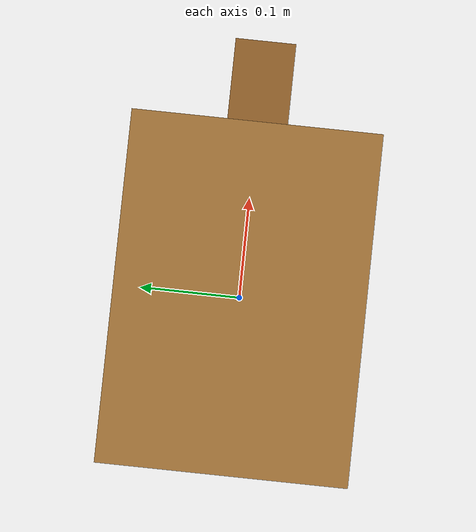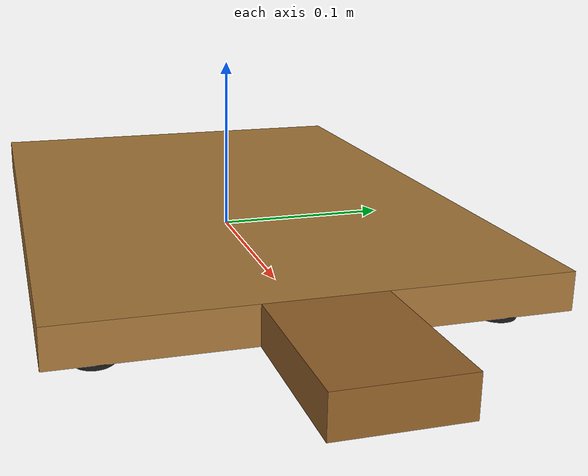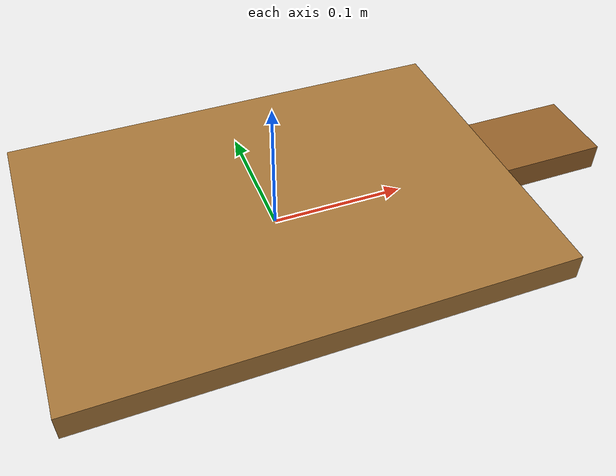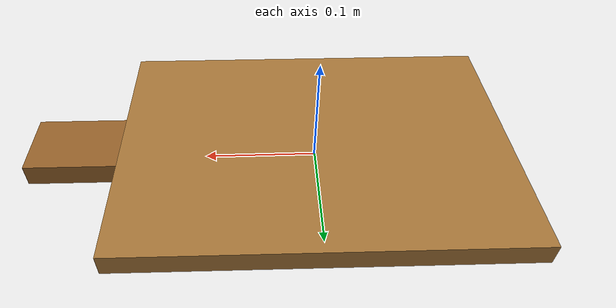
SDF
<?xml version="1.0" ?>
<sdf version="1.7">
  <model name="chop_board">
    <static>false</static>
    <link name="link">

      <inertial>
        <!-- Approximate as solid box 0.35 × 0.25 × 0.02 m, ~1.2 kg -->
        <mass>1.2</mass>
        <inertia>
          <!-- ixx=(1/12)*m*(y²+z²)  iyy=(1/12)*m*(x²+z²)  izz=(1/12)*m*(x²+y²) -->
          <ixx>0.006253</ixx>
          <iyy>0.012260</iyy>
          <izz>0.018300</izz>
          <ixy>0</ixy><ixz>0</ixz><iyz>0</iyz>
        </inertia>
      </inertial>

      <!-- Main board ───────────────────────────────── -->
      <collision name="board_collision">
        <pose>0 0 0.01 0 0 0</pose>
        <geometry><box><size>0.35 0.25 0.02</size></box></geometry>
        <surface><friction><ode><mu>0.9</mu><mu2>0.9</mu2></ode></friction></surface>
      </collision>
      <visual name="board_visual">
        <pose>0 0 0.01 0 0 0</pose>
        <geometry><box><size>0.35 0.25 0.02</size></box></geometry>
        <material>
          <ambient>0.55 0.38 0.18 1</ambient>
          <diffuse>0.65 0.46 0.22 1</diffuse>
          <specular>0.04 0.03 0.02 1</specular>
        </material>
      </visual>

      <!-- Handle ───────────────────────────────────── -->
      <collision name="handle_collision">
        <pose>0.215 0 0.01 0 0 0</pose>
        <geometry><box><size>0.08 0.06 0.02</size></box></geometry>
      </collision>
      <visual name="handle_visual">
        <pose>0.215 0 0.01 0 0 0</pose>
        <geometry><box><size>0.08 0.06 0.02</size></box></geometry>
        <material>
          <ambient>0.50 0.32 0.14 1</ambient>
          <diffuse>0.58 0.38 0.16 1</diffuse>
          <specular>0.04 0.03 0.02 1</specular>
        </material>
      </visual>

      <!-- Juice groove — left ──────────────────────── -->

      <!-- Juice groove — right ─────────────────────── -->

      <!-- Front-left foot ──────────────────────────── -->
      <collision name="foot_front_left_collision">
        <pose>-0.15 0.10 -0.005 0 0 0</pose>
        <geometry><cylinder><radius>0.010</radius><length>0.010</length></cylinder></geometry>
        <surface><friction><ode><mu>1.2</mu><mu2>1.2</mu2></ode></friction></surface>
      </collision>
      <visual name="foot_front_left_visual">
        <pose>-0.15 0.10 -0.005 0 0 0</pose>
        <geometry><cylinder><radius>0.010</radius><length>0.010</length></cylinder></geometry>
        <material>
          <ambient>0.08 0.08 0.08 1</ambient>
          <diffuse>0.10 0.10 0.10 1</diffuse>
          <specular>0.01 0.01 0.01 1</specular>
        </material>
      </visual>

      <!-- Front-right foot ─────────────────────────── -->
      <collision name="foot_front_right_collision">
        <pose>0.15 0.10 -0.005 0 0 0</pose>
        <geometry><cylinder><radius>0.010</radius><length>0.010</length></cylinder></geometry>
        <surface><friction><ode><mu>1.2</mu><mu2>1.2</mu2></ode></friction></surface>
      </collision>
      <visual name="foot_front_right_visual">
        <pose>0.15 0.10 -0.005 0 0 0</pose>
        <geometry><cylinder><radius>0.010</radius><length>0.010</length></cylinder></geometry>
        <material>
          <ambient>0.08 0.08 0.08 1</ambient>
          <diffuse>0.10 0.10 0.10 1</diffuse>
          <specular>0.01 0.01 0.01 1</specular>
        </material>
      </visual>

      <!-- Back-left foot ───────────────────────────── -->
      <collision name="foot_back_left_collision">
        <pose>-0.15 -0.10 -0.005 0 0 0</pose>
        <geometry><cylinder><radius>0.010</radius><length>0.010</length></cylinder></geometry>
        <surface><friction><ode><mu>1.2</mu><mu2>1.2</mu2></ode></friction></surface>
      </collision>
      <visual name="foot_back_left_visual">
        <pose>-0.15 -0.10 -0.005 0 0 0</pose>
        <geometry><cylinder><radius>0.010</radius><length>0.010</length></cylinder></geometry>
        <material>
          <ambient>0.08 0.08 0.08 1</ambient>
          <diffuse>0.10 0.10 0.10 1</diffuse>
          <specular>0.01 0.01 0.01 1</specular>
        </material>
      </visual>

      <!-- Back-right foot ──────────────────────────── -->
      <collision name="foot_back_right_collision">
        <pose>0.15 -0.10 -0.005 0 0 0</pose>
        <geometry><cylinder><radius>0.010</radius><length>0.010</length></cylinder></geometry>
        <surface><friction><ode><mu>1.2</mu><mu2>1.2</mu2></ode></friction></surface>
      </collision>
      <visual name="foot_back_right_visual">
        <pose>0.15 -0.10 -0.005 0 0 0</pose>
        <geometry><cylinder><radius>0.010</radius><length>0.010</length></cylinder></geometry>
        <material>
          <ambient>0.08 0.08 0.08 1</ambient>
          <diffuse>0.10 0.10 0.10 1</diffuse>
          <specular>0.01 0.01 0.01 1</specular>
        </material>
      </visual>

    </link>
  </model>
</sdf>
